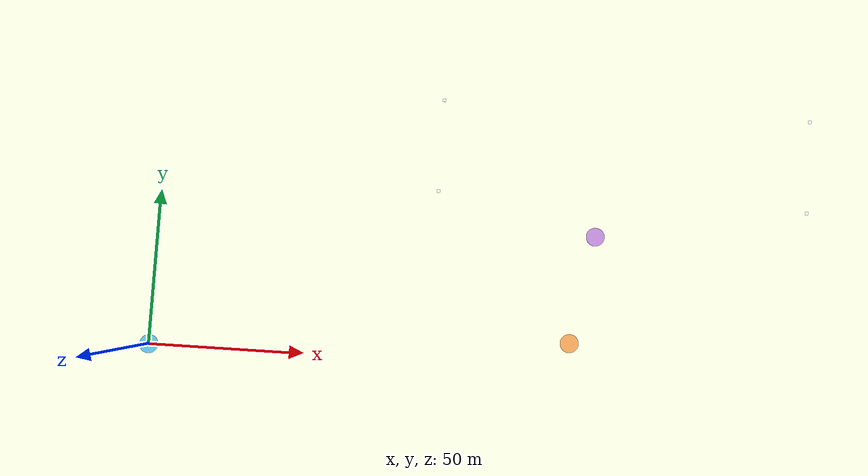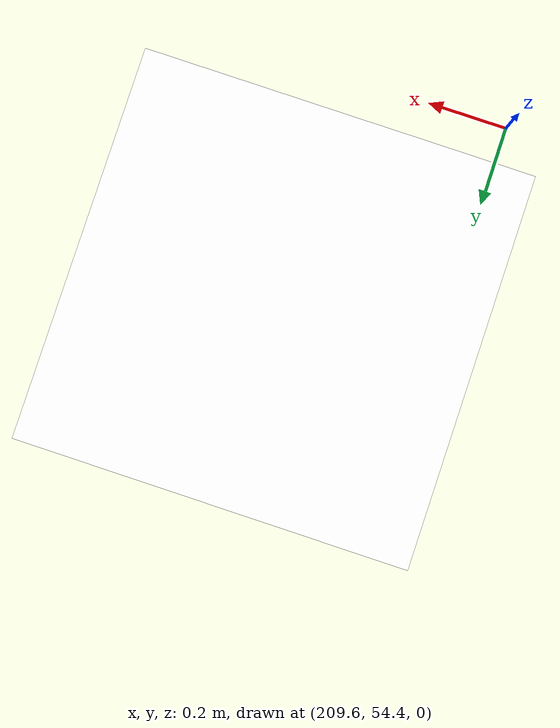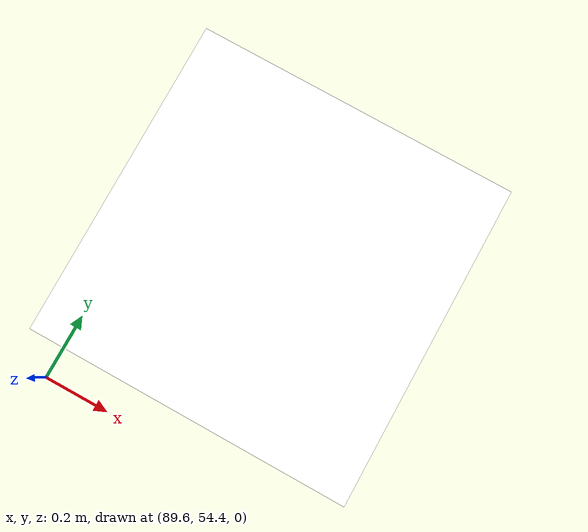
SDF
<sdf version="1.9">
 <world name="kmitl_airfield">
  <physics name="1ms" type="ode">
   <max_step_size>0.001</max_step_size>
   <real_time_factor>1.0</real_time_factor>
  </physics>
  <spherical_coordinates>
   <surface_model>EARTH_WGS84</surface_model>
   <latitude_deg>13.730322</latitude_deg>
   <longitude_deg>100.787446</longitude_deg>
   <elevation>2.0</elevation>
   <heading_deg>0</heading_deg>
  </spherical_coordinates>
  <scene>
   <ambient>0.65 0.65 0.65 1</ambient>
   <background>0.6 0.8 1.0 1</background>
   <shadows>true</shadows>
   <sky><time>12</time><sunrise>6</sunrise><sunset>18</sunset><clouds><speed>12</speed></clouds></sky>
  </scene>
  <light type="directional" name="sun">
   <pose>0 0 50 0 0 0</pose>
   <diffuse>1.0 1.0 0.95 1</diffuse>
   <specular>0.4 0.4 0.4 1</specular>
   <attenuation>
    <range>1000</range>
    <constant>0.9</constant>
    <linear>0.01</linear>
    <quadratic>0.001</quadratic>
   </attenuation>
   <direction>-0.4 0.2 -0.9</direction>
  </light>
  <model name="checkpoint_point_1">
   <static>true</static>
   <pose>0 0 0.015 0 0 0</pose>
   <link name="link">
    <collision name="collision">
     <geometry><cylinder><radius>3.0</radius><length>0.02</length></cylinder></geometry>
    </collision>
    <visual name="visual">
     <geometry><cylinder><radius>3.0</radius><length>0.02</length></cylinder></geometry>
     <material>
      <ambient>0.35 0.75 0.9 1</ambient>
      <diffuse>0.35 0.75 0.9 1</diffuse>
      <specular>0.1 0.1 0.1 1</specular>
     </material>
    </visual>
   </link>
  </model>
  <model name="checkpoint_point_2">
   <static>true</static>
   <pose>135.2 8.3 0.015 0 0 0</pose>
   <link name="link">
    <collision name="collision">
     <geometry><cylinder><radius>3.0</radius><length>0.02</length></cylinder></geometry>
    </collision>
    <visual name="visual">
     <geometry><cylinder><radius>3.0</radius><length>0.02</length></cylinder></geometry>
     <material>
      <ambient>0.95 0.65 0.35 1</ambient>
      <diffuse>0.95 0.65 0.35 1</diffuse>
      <specular>0.1 0.1 0.1 1</specular>
     </material>
    </visual>
   </link>
  </model>
  <model name="checkpoint_point_3">
   <static>true</static>
   <pose>141.8 43.1 0.015 0 0 0</pose>
   <link name="link">
    <collision name="collision">
     <geometry><cylinder><radius>3.0</radius><length>0.02</length></cylinder></geometry>
    </collision>
    <visual name="visual">
     <geometry><cylinder><radius>3.0</radius><length>0.02</length></cylinder></geometry>
     <material>
      <ambient>0.75 0.55 0.85 1</ambient>
      <diffuse>0.75 0.55 0.85 1</diffuse>
      <specular>0.1 0.1 0.1 1</specular>
     </material>
    </visual>
   </link>
  </model>
  <model name="aruco_pad_home">
   <static>true</static>
   <pose>0 0 0.025 0 0 0</pose>
   <link name="link">
    <collision name="collision"><geometry><box><size>1.0 1.0 0.05</size></box></geometry></collision>
    <visual name="visual">
     <geometry><box><size>1.0 1.0 0.05</size></box></geometry>
     <material>
      <ambient>1 1 1 1</ambient>
      <diffuse>1 1 1 1</diffuse>
      <pbr>
       <metal>
        <albedo_map>materials/textures/aruco_5.png</albedo_map>
        <roughness>0.3</roughness>
        <metalness>0.0</metalness>
       </metal>
      </pbr>
     </material>
    </visual>
   </link>
  </model>
  <model name="aruco_pad_1">
   <static>true</static>
   <pose>90 85 0.025 0 0 0</pose>
   <link name="link">
    <collision name="collision"><geometry><box><size>1.0 1.0 0.05</size></box></geometry></collision>
    <visual name="visual">
     <geometry><box><size>1.0 1.0 0.05</size></box></geometry>
     <material>
      <ambient>1 1 1 1</ambient>
      <diffuse>1 1 1 1</diffuse>
      <pbr>
       <metal>
        <albedo_map>materials/textures/aruco_1.png</albedo_map>
        <roughness>0.3</roughness>
        <metalness>0.0</metalness>
       </metal>
      </pbr>
     </material>
    </visual>
   </link>
  </model>
  <model name="aruco_pad_2">
   <static>true</static>
   <pose>210 85 0.025 0 0 0</pose>
   <link name="link">
    <collision name="collision"><geometry><box><size>1.0 1.0 0.05</size></box></geometry></collision>
    <visual name="visual">
     <geometry><box><size>1.0 1.0 0.05</size></box></geometry>
     <material>
      <ambient>1 1 1 1</ambient>
      <diffuse>1 1 1 1</diffuse>
      <pbr>
       <metal>
        <albedo_map>materials/textures/aruco_2.png</albedo_map>
        <roughness>0.3</roughness>
        <metalness>0.0</metalness>
       </metal>
      </pbr>
     </material>
    </visual>
   </link>
  </model>
  <model name="aruco_pad_3">
   <static>true</static>
   <pose>90 55 0.025 0 0 0</pose>
   <link name="link">
    <collision name="collision"><geometry><box><size>1.0 1.0 0.05</size></box></geometry></collision>
    <visual name="visual">
     <geometry><box><size>1.0 1.0 0.05</size></box></geometry>
     <material>
      <ambient>1 1 1 1</ambient>
      <diffuse>1 1 1 1</diffuse>
      <pbr>
       <metal>
        <albedo_map>materials/textures/aruco_3.png</albedo_map>
        <roughness>0.3</roughness>
        <metalness>0.0</metalness>
       </metal>
      </pbr>
     </material>
    </visual>
   </link>
  </model>
  <model name="aruco_pad_4">
   <static>true</static>
   <pose>210 55 0.025 0 0 0</pose>
   <link name="link">
    <collision name="collision"><geometry><box><size>1.0 1.0 0.05</size></box></geometry></collision>
    <visual name="visual">
     <geometry><box><size>1.0 1.0 0.05</size></box></geometry>
     <material>
      <ambient>1 1 1 1</ambient>
      <diffuse>1 1 1 1</diffuse>
      <pbr>
       <metal>
        <albedo_map>materials/textures/aruco_4.png</albedo_map>
        <roughness>0.3</roughness>
        <metalness>0.0</metalness>
       </metal>
      </pbr>
     </material>
    </visual>
   </link>
  </model>
 </world>
</sdf>
